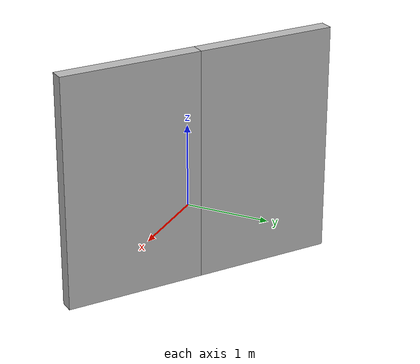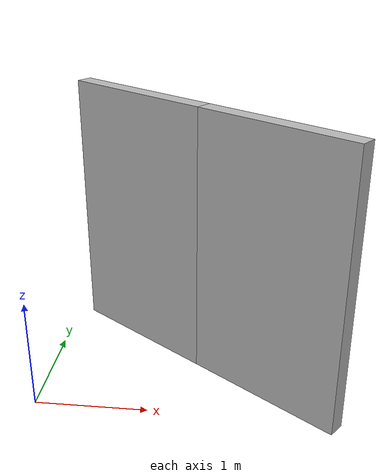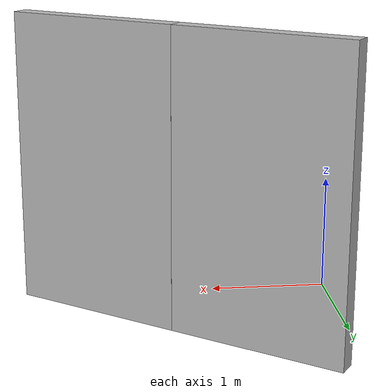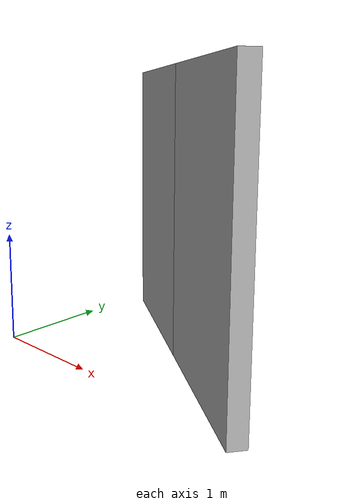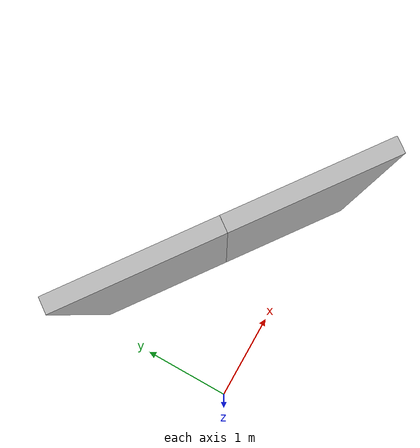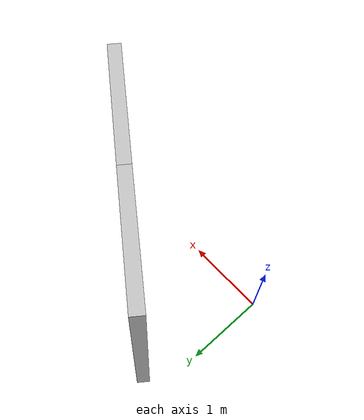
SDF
<?xml version="1.0" ?>
<sdf version="1.6">
  <model name="sps_3843">
    <pose frame="">0 0 0 0 -0 0</pose>
    <static>1</static>
    <self_collide>0</self_collide>
    <allow_auto_disable>0</allow_auto_disable>
    <link name="Wall11110">
      <kinematic>0</kinematic>
      <gravity>1</gravity>
      <self_collide>0</self_collide>
      <collision name="collision">
        <geometry>
          <box>
            <size>1.503 0.15 2.5</size>
          </box>
        </geometry>
        <pose frame="">0 0 0 0 -0 0</pose>
      </collision>
      <visual name="visual">
        <geometry>
          <box>
            <size>1.503 0.15 2.5</size>
          </box>
        </geometry>
        <pose frame="">0 0 0 0 -0 0</pose>
        <cast_shadows>1</cast_shadows>
        <transparency>0.0</transparency>
      </visual>
      <pose frame="">2.00954 0.347091 1.25 0 -0 2.5072</pose>
    </link>
    <link name="Wall11111">
      <kinematic>0</kinematic>
      <gravity>1</gravity>
      <self_collide>0</self_collide>
      <collision name="collision">
        <geometry>
          <box>
            <size>1.50314 0.15 2.5</size>
          </box>
        </geometry>
        <pose frame="">0 0 0 0 -0 0</pose>
      </collision>
      <visual name="visual">
        <geometry>
          <box>
            <size>1.50314 0.15 2.5</size>
          </box>
        </geometry>
        <pose frame="">0 0 0 0 -0 0</pose>
        <cast_shadows>1</cast_shadows>
        <transparency>0.0</transparency>
      </visual>
      <pose frame="">0.798148 1.23689 1.25 0 -0 2.50893</pose>
    </link>
  </model>
</sdf>
